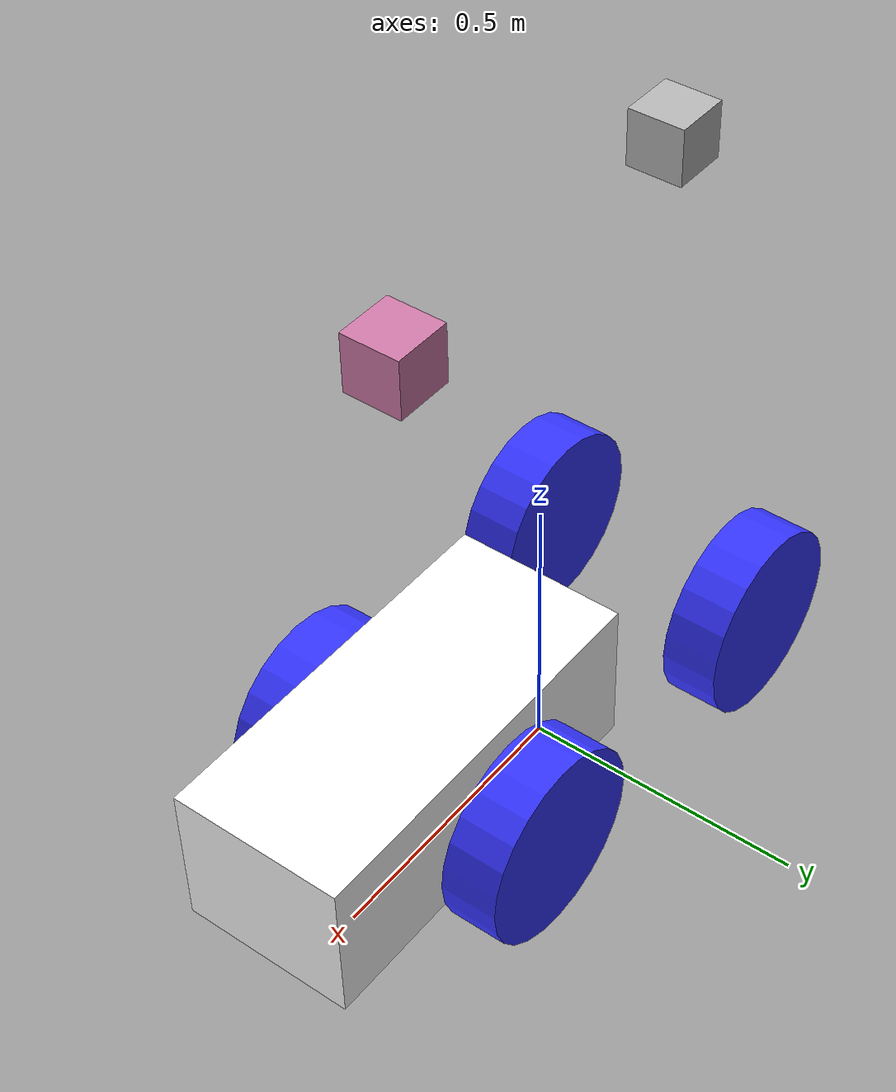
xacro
<?xml version="1.0"?>
<robot xmlns:xacro="http://www.ros.org/wiki/xacro"  name="robot">

	<xacro:include filename="../inertial_macros.xacro"/>

	<material name="white">
		<color rgba="1 1 1 1"/>
	</material>

	<material name="orange">
		<color rgba="1 0.3 0.1 1"/>
	</material>

	<material name="blue">
		<color rgba="0.2 0.2 1 1"/>
	</material>

	<material name="black">
		<color rgba="0 0 0 1"/>
	</material>

	<link name="base_link">

	</link>

	<joint name="chassis_joint" type="fixed">
		<parent link="base_link"/>
		<child link="chassis"/>
		<!--This should be just behind rear axle, edge of chassis-->
		<origin xyz="0 0 .11"/>
	</joint>

	<link name="chassis">
		<visual>
			<!--offset chassis-->
			<origin xyz="0 -.152 0"/>
			<geometry>
				<!--box size="0.3 0.3 0.15"/-->
				<mesh filename="package://oscar_ros/description/BaseASCII-binary.STL"/>
			</geometry>
			<material name="white"/>
		</visual>
		<collision>
			<!--offset chassis-->
			<origin xyz="0 -.152 0"/>
			<geometry>
				<mesh filename="package://oscar_ros/description/BaseASCII-binary.STL"/>
			</geometry>
		</collision>>
		<xacro:inertial_box mass="0.5" x="0.692" y="0.304" z="0.3">
			<origin xyz="0 0 .11" rpy="0 0 0"/>
		</xacro:inertial_box>
	</link>

	<gazebo reference="chassis">
		<material>Gazebo/White</material>
		<mu1 value="0.1"/>
		<mu2 value="0.5"/>
	</gazebo>

	<joint name="rear_left_wheel_joint" type="continuous">
		<parent link="base_link"/>
		<child link="rear_left_wheel"/>
		<!-- physically rotating cylinder & placing it correctly -->
		<origin xyz="-.3 .21 .17" rpy="-${pi/2} 0 0"/>
		<!-- rotation axis -->
		<axis xyz="0 0 1"/>
	</joint>

	<link name="rear_left_wheel">
		<visual>
			<geometry>
				<cylinder length=".1" radius="0.17"/>
			</geometry>
			<material name="blue"/>
		</visual>
		<collision>
			<geometry>
				<cylinder length="0.1" radius="0.17"/>
			</geometry>
		</collision>
		<xacro:inertial_cylinder mass="0.1" length="0.1" radius="0.17">
			<origin xyz="0 0 0" rpy="0 0 0"/>
		</xacro:inertial_cylinder>
	</link>

	<gazebo reference="rear_left_wheel">
		<material>Gazebo/Blue</material>
		<mu1 value="0.1"/>
		<mu2 value="0.5"/>
	</gazebo>

	<joint name="front_left_wheel_joint" type="continuous">
		<parent link="base_link"/>
		<child link="front_left_wheel"/>
		<!-- physically rotating cylinder & placing it correctly -->
		<origin xyz=".3 .21 .17" rpy="-${pi/2} 0 0"/>
		<!-- rotation axis -->
		<axis xyz="0 0 1"/>
	</joint>

	<link name="front_left_wheel">
		<visual>
			<geometry>
				<cylinder length=".1" radius="0.17"/>
			</geometry>
			<material name="blue"/>
		</visual>
		<collision>
			<geometry>
				<cylinder length="0.1" radius="0.17"/>
			</geometry>
		</collision>
		<xacro:inertial_cylinder mass="0.1" length="0.1" radius="0.17">
			<origin xyz="0 0 0" rpy="0 0 0"/>
		</xacro:inertial_cylinder>
	</link>

	<gazebo reference="front_left_wheel">
		<material>Gazebo/Blue</material>
		<mu1 value="0.1"/>
		<mu2 value="0.5"/>
	</gazebo>

	<joint name="rear_right_wheel_joint" type="continuous">
		<parent link="base_link"/>
		<child link="rear_right_wheel"/>
		<!-- physically rotating cylinder & placing it correctly -->
		<origin xyz="-.3 -.21 .17" rpy="-${pi/2} 0 0"/>
		<!-- rotation axis -->
		<axis xyz="0 0 1"/>
	</joint>

	<link name="rear_right_wheel">
		<visual>
			<geometry>
				<cylinder length=".1" radius="0.17"/>
			</geometry>
			<material name="blue"/>
		</visual>
		<collision>
			<geometry>
				<cylinder length="0.1" radius="0.17"/>
			</geometry>
		</collision>
		<xacro:inertial_cylinder mass="0.1" length="0.1" radius="0.17">
			<origin xyz="0 0 0" rpy="0 0 0"/>
		</xacro:inertial_cylinder>
	</link>

	<gazebo reference="rear_right_wheel">
		<material>Gazebo/Blue</material>
		<mu1 value="0.1"/>
		<mu2 value="0.5"/>
	</gazebo>

	<joint name="front_right_wheel_joint" type="continuous">
		<parent link="base_link"/>
		<child link="front_right_wheel"/>
		<!-- physically rotating cylinder & placing it correctly -->
		<origin xyz=".3 -.21 .17" rpy="-${pi/2} 0 0"/>
		<!-- rotation axis -->
		<axis xyz="0 0 1"/>
	</joint>

	<link name="front_right_wheel">
		<visual>
			<geometry>
				<cylinder length=".1" radius="0.17"/>
			</geometry>
			<material name="blue"/>
		</visual>
		<collision>
			<geometry>
				<cylinder length="0.1" radius="0.17"/>
			</geometry>
		</collision>
		<xacro:inertial_cylinder mass="0.1" length="0.1" radius="0.17">
			<origin xyz="0 0 0" rpy="0 0 0"/>
		</xacro:inertial_cylinder>
	</link>

    <joint name="gps_joint" type="fixed">
        <parent link="base_link"/>
        <child link="gps_frame"/>
        <origin xyz=".33 0 1.03" rpy="0 0 0"/>
    </joint>

    <link name="gps_frame">
        <visual>
            <geometry>
                <box size="0.1 0.1 0.1"/>
            </geometry>
        </visual>
    </link>

    <joint name="aux1_joint" type="fixed">
        <parent link="base_link"/>
        <child link="aux1_frame"/>
        <origin xyz="-.33 0 1.03" rpy="0 0 0"/>
    </joint>

    <link name="aux1_frame">
        <visual>
            <geometry>
                <box size="0.1 0.1 0.1"/>
            </geometry>
        </visual>
    </link>

    <joint name="bno055_joint" type="fixed">
        <parent link="base_link"/>
        <child link="bno055"/>
        <origin xyz="-0.05 0 0.17" rpy="0 0 0"/>
    </joint>

    <link name="bno055">
        <visual>
            <geometry>
                <box size="0.1 0.1 0.1"/>
            </geometry>
        </visual>
    </link>

	<gazebo reference="front_right_wheel">
		<material>Gazebo/Blue</material>
		<mu1 value="0.1"/>
		<mu2 value="0.5"/>
	</gazebo>
</robot>
